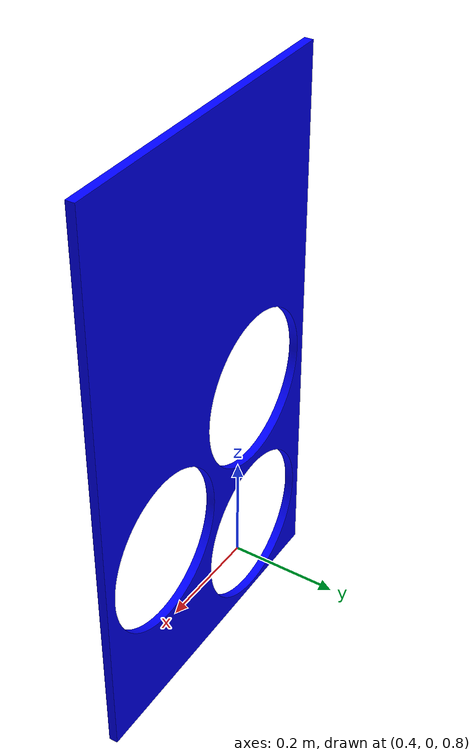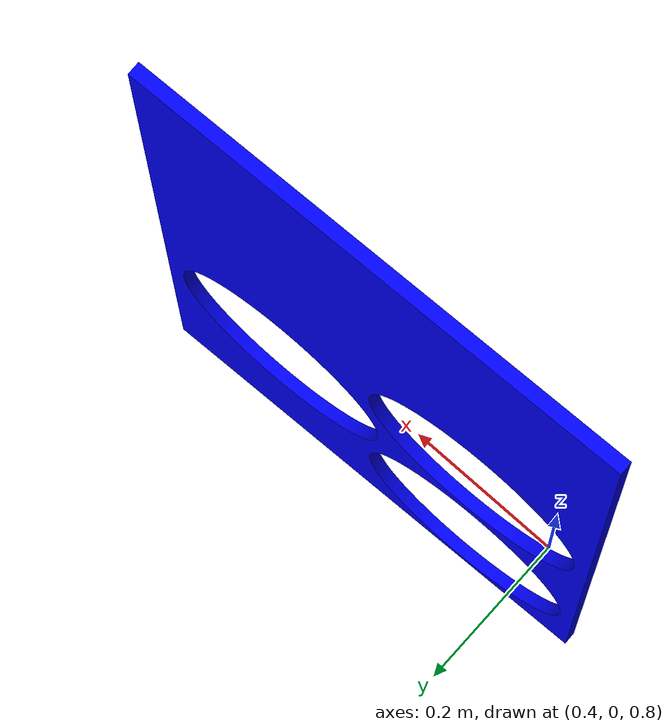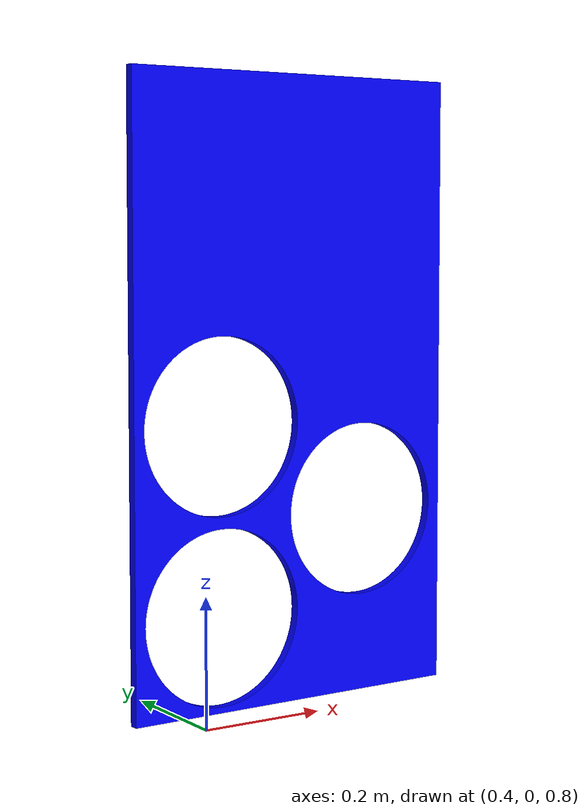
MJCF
<mujoco model="obstacle_two_fb">
  <default>
    <default class="two_fb_visual">
      <geom type="mesh" contype="0" group="2" conaffinity="0"/>
    </default>
    <default class="two_fb_collision">
      <geom type="mesh" group="3"/>
    </default>
  </default>
  <asset>
    <material name="two_fb" specular="0.0" shininess="0.0" rgba="0.0 0.0 255 1"/>
    <mesh file="obstacle_two_fb.obj"/>
    <mesh file="obstacle_two_fb_collision_0.obj"/>
    <mesh file="obstacle_two_fb_collision_1.obj"/>
    <mesh file="obstacle_two_fb_collision_2.obj"/>
    <mesh file="obstacle_two_fb_collision_3.obj"/>
    <mesh file="obstacle_two_fb_collision_4.obj"/>
    <mesh file="obstacle_two_fb_collision_5.obj"/>
    <mesh file="obstacle_two_fb_collision_6.obj"/>
    <mesh file="obstacle_two_fb_collision_7.obj"/>
    <mesh file="obstacle_two_fb_collision_8.obj"/>
    <mesh file="obstacle_two_fb_collision_9.obj"/>
    <mesh file="obstacle_two_fb_collision_10.obj"/>
    <mesh file="obstacle_two_fb_collision_11.obj"/>
    <mesh file="obstacle_two_fb_collision_12.obj"/>
    <mesh file="obstacle_two_fb_collision_13.obj"/>
    <mesh file="obstacle_two_fb_collision_14.obj"/>
    <mesh file="obstacle_two_fb_collision_15.obj"/>
    <mesh file="obstacle_two_fb_collision_16.obj"/>
    <mesh file="obstacle_two_fb_collision_17.obj"/>
    <mesh file="obstacle_two_fb_collision_18.obj"/>
    <mesh file="obstacle_two_fb_collision_19.obj"/>
    <mesh file="obstacle_two_fb_collision_20.obj"/>
    <mesh file="obstacle_two_fb_collision_21.obj"/>
    <mesh file="obstacle_two_fb_collision_22.obj"/>
    <mesh file="obstacle_two_fb_collision_23.obj"/>
    <mesh file="obstacle_two_fb_collision_24.obj"/>
    <mesh file="obstacle_two_fb_collision_25.obj"/>
    <mesh file="obstacle_two_fb_collision_26.obj"/>
    <mesh file="obstacle_two_fb_collision_27.obj"/>
    <mesh file="obstacle_two_fb_collision_28.obj"/>
    <mesh file="obstacle_two_fb_collision_29.obj"/>
    <mesh file="obstacle_two_fb_collision_30.obj"/>
    <mesh file="obstacle_two_fb_collision_31.obj"/>
    <mesh file="obstacle_two_fb_collision_32.obj"/>
    <mesh file="obstacle_two_fb_collision_33.obj"/>
    <mesh file="obstacle_two_fb_collision_34.obj"/>
    <mesh file="obstacle_two_fb_collision_35.obj"/>
    <mesh file="obstacle_two_fb_collision_36.obj"/>
    <mesh file="obstacle_two_fb_collision_37.obj"/>
    <mesh file="obstacle_two_fb_collision_38.obj"/>
    <mesh file="obstacle_two_fb_collision_39.obj"/>
    <mesh file="obstacle_two_fb_collision_40.obj"/>
    <mesh file="obstacle_two_fb_collision_41.obj"/>
    <mesh file="obstacle_two_fb_collision_42.obj"/>
    <mesh file="obstacle_two_fb_collision_43.obj"/>
    <mesh file="obstacle_two_fb_collision_44.obj"/>
    <mesh file="obstacle_two_fb_collision_45.obj"/>
    <mesh file="obstacle_two_fb_collision_46.obj"/>
    <mesh file="obstacle_two_fb_collision_47.obj"/>
  </asset>
  <worldbody>
    <body name="obstacle_two_fb" pos="0.6 0.08 1.29" euler="0.0 0.0 1.6">
      <geom material="two_fb" mesh="obstacle_two_fb" class="two_fb_visual"/>
      <geom mesh="obstacle_two_fb_collision_0" rgba="0.6121669693690996 0.4113694698392256 0.3413031292973341 1" class="two_fb_collision"/>
      <geom mesh="obstacle_two_fb_collision_1" rgba="0.03644554356893659 0.778195643815359 0.4674197445972066 1" class="two_fb_collision"/>
      <geom mesh="obstacle_two_fb_collision_2" rgba="0.97748674217056 0.48338046482918806 0.11789043598830662 1" class="two_fb_collision"/>
      <geom mesh="obstacle_two_fb_collision_3" rgba="0.4882896773909019 0.6308350289917579 0.6619729953959 1" class="two_fb_collision"/>
      <geom mesh="obstacle_two_fb_collision_4" rgba="0.3499130351751938 0.8970204252451092 0.6068990912704189 1" class="two_fb_collision"/>
      <geom mesh="obstacle_two_fb_collision_5" rgba="0.36395846047497893 0.14137855478574146 0.3553979173782372 1" class="two_fb_collision"/>
      <geom mesh="obstacle_two_fb_collision_6" rgba="0.766746227502559 0.2912966525659355 0.006277069020277692 1" class="two_fb_collision"/>
      <geom mesh="obstacle_two_fb_collision_7" rgba="0.4522962780048281 0.704836755214651 0.9198368557344843 1" class="two_fb_collision"/>
      <geom mesh="obstacle_two_fb_collision_8" rgba="0.4124776816355785 0.5789507790252574 0.04761873060774757 1" class="two_fb_collision"/>
      <geom mesh="obstacle_two_fb_collision_9" rgba="0.9818923718518916 0.20437955181894318 0.046440268462156875 1" class="two_fb_collision"/>
      <geom mesh="obstacle_two_fb_collision_10" rgba="0.25982053433898455 0.88126330601938 0.46752368996437366 1" class="two_fb_collision"/>
      <geom mesh="obstacle_two_fb_collision_11" rgba="0.08130764681666247 0.7306106188849261 0.6871081944851365 1" class="two_fb_collision"/>
      <geom mesh="obstacle_two_fb_collision_12" rgba="0.9835526988632577 0.5471152544990687 0.587962850434469 1" class="two_fb_collision"/>
      <geom mesh="obstacle_two_fb_collision_13" rgba="0.36774416221620143 0.0712005968442041 0.6816122333034178 1" class="two_fb_collision"/>
      <geom mesh="obstacle_two_fb_collision_14" rgba="0.32237296046519737 0.03283452183001445 0.5462461165269208 1" class="two_fb_collision"/>
      <geom mesh="obstacle_two_fb_collision_15" rgba="0.6513115295902481 0.8253359646637775 0.8672838172408316 1" class="two_fb_collision"/>
      <geom mesh="obstacle_two_fb_collision_16" rgba="0.9345808112819473 0.5587715502245454 0.4570013845190568 1" class="two_fb_collision"/>
      <geom mesh="obstacle_two_fb_collision_17" rgba="0.4566640342981877 0.6465284969851611 0.05568308660246124 1" class="two_fb_collision"/>
      <geom mesh="obstacle_two_fb_collision_18" rgba="0.7073501053547508 0.9953810676830798 0.7532262144284373 1" class="two_fb_collision"/>
      <geom mesh="obstacle_two_fb_collision_19" rgba="0.9809564975393856 0.038259259933058454 0.8442203285555078 1" class="two_fb_collision"/>
      <geom mesh="obstacle_two_fb_collision_20" rgba="0.41161427533889106 0.5947547027886994 0.05495106726725163 1" class="two_fb_collision"/>
      <geom mesh="obstacle_two_fb_collision_21" rgba="0.11835571843731607 0.3756759031971785 0.49915648784832745 1" class="two_fb_collision"/>
      <geom mesh="obstacle_two_fb_collision_22" rgba="0.5684218734386747 0.7391980371598424 0.5374194666842235 1" class="two_fb_collision"/>
      <geom mesh="obstacle_two_fb_collision_23" rgba="0.44274246701320563 0.22691657248018415 0.6688000325901313 1" class="two_fb_collision"/>
      <geom mesh="obstacle_two_fb_collision_24" rgba="0.9342836637747305 0.7006558154427435 0.16132978307070478 1" class="two_fb_collision"/>
      <geom mesh="obstacle_two_fb_collision_25" rgba="0.1527569842875488 0.4299748462819325 0.8049188479797187 1" class="two_fb_collision"/>
      <geom mesh="obstacle_two_fb_collision_26" rgba="0.8824240950542553 0.05653652660114816 0.4494106787791531 1" class="two_fb_collision"/>
      <geom mesh="obstacle_two_fb_collision_27" rgba="0.21746210962032464 0.20884203179311256 0.34299405370420455 1" class="two_fb_collision"/>
      <geom mesh="obstacle_two_fb_collision_28" rgba="0.09594250586524178 0.45861819173752627 0.9779688420077234 1" class="two_fb_collision"/>
      <geom mesh="obstacle_two_fb_collision_29" rgba="0.881448096353013 0.7987610453982283 0.727318381821782 1" class="two_fb_collision"/>
      <geom mesh="obstacle_two_fb_collision_30" rgba="0.6518028485195456 0.639493471262924 0.7776091804440047 1" class="two_fb_collision"/>
      <geom mesh="obstacle_two_fb_collision_31" rgba="0.7447476142172544 0.9011952815704716 0.11236993665688733 1" class="two_fb_collision"/>
      <geom mesh="obstacle_two_fb_collision_32" rgba="0.19652497166918648 0.639330334865136 0.05906070398442609 1" class="two_fb_collision"/>
      <geom mesh="obstacle_two_fb_collision_33" rgba="0.6381869004263675 0.984587475086633 0.3765330648948918 1" class="two_fb_collision"/>
      <geom mesh="obstacle_two_fb_collision_34" rgba="0.985627115167958 0.08199821948799613 0.214951838071204 1" class="two_fb_collision"/>
      <geom mesh="obstacle_two_fb_collision_35" rgba="0.46701395981868554 0.7872354470458217 0.9081245491453687 1" class="two_fb_collision"/>
      <geom mesh="obstacle_two_fb_collision_36" rgba="0.32944890413749683 0.3594938668375278 0.17593397211161854 1" class="two_fb_collision"/>
      <geom mesh="obstacle_two_fb_collision_37" rgba="0.36305341051336704 0.43543120200335395 0.8986265138616737 1" class="two_fb_collision"/>
      <geom mesh="obstacle_two_fb_collision_38" rgba="0.9061656432616214 0.4060176418387488 0.15060048469196163 1" class="two_fb_collision"/>
      <geom mesh="obstacle_two_fb_collision_39" rgba="0.6270187417508433 0.1349831933619975 0.19421391769555774 1" class="two_fb_collision"/>
      <geom mesh="obstacle_two_fb_collision_40" rgba="0.19992992416639155 0.24850830806134838 0.20011588363756405 1" class="two_fb_collision"/>
      <geom mesh="obstacle_two_fb_collision_41" rgba="0.5160978603293104 0.6619146486119045 0.3297146633015161 1" class="two_fb_collision"/>
      <geom mesh="obstacle_two_fb_collision_42" rgba="0.3146586663351867 0.8778890741863584 0.365156177204626 1" class="two_fb_collision"/>
      <geom mesh="obstacle_two_fb_collision_43" rgba="0.9726050757727378 0.7413701235825457 0.9005975950844218 1" class="two_fb_collision"/>
      <geom mesh="obstacle_two_fb_collision_44" rgba="0.1099940399721493 0.6769755872425516 0.2222119611389981 1" class="two_fb_collision"/>
      <geom mesh="obstacle_two_fb_collision_45" rgba="0.5433842350436852 0.8966480761145498 0.8476439804754694 1" class="two_fb_collision"/>
      <geom mesh="obstacle_two_fb_collision_46" rgba="0.9106165632247167 0.2102902148126996 0.2212307879752805 1" class="two_fb_collision"/>
      <geom mesh="obstacle_two_fb_collision_47" rgba="0.42300403144382503 0.5462532922367961 0.9700996238372842 1" class="two_fb_collision"/>
    </body>
  </worldbody>
</mujoco>
